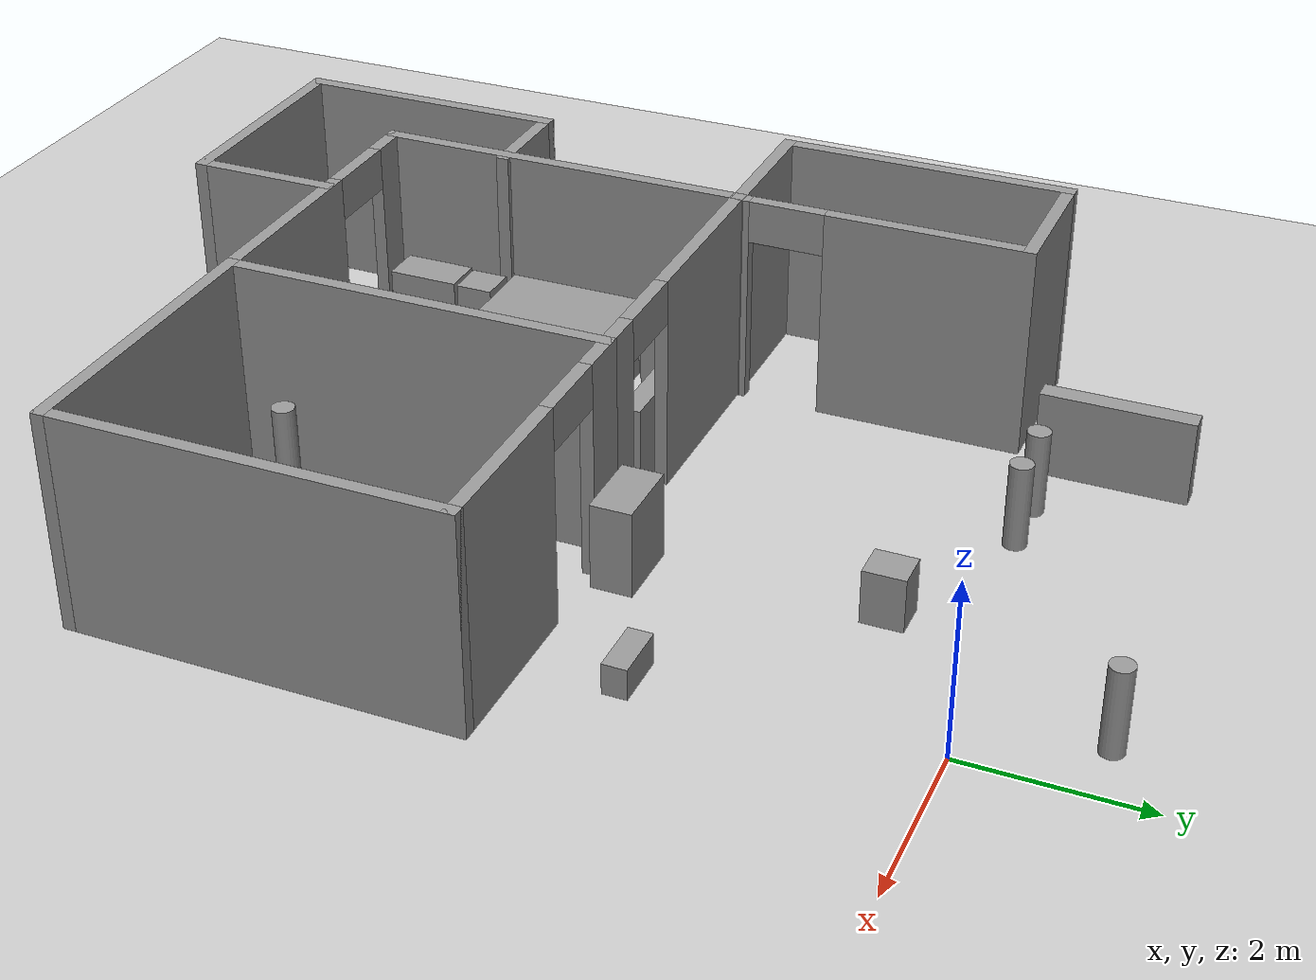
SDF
<sdf version="1.6">
 <world name="default">
  <model name="ground_plane">
   <static>1</static>
   <link name="link">
    <collision name="collision">
     <geometry><plane><normal>0 0 1</normal><size>100 100</size></plane></geometry>
     <surface><friction><ode><mu>100</mu><mu2>50</mu2></ode></friction></surface>
    </collision>
    <visual name="visual">
     <cast_shadows>0</cast_shadows>
     <geometry><plane><normal>0 0 1</normal><size>100 100</size></plane></geometry>
     <material>
      <script><uri>file://media/materials/scripts/gazebo.material</uri><name>Gazebo/Grey</name></script>
     </material>
    </visual>
   </link>
  </model>
  <model name="cma_varanda1">
   <pose>-6.32518 -2.59313 0 0 -0 0</pose>
   <link name="Wall_0">
    <pose>0.8 0 0 0 0 -1.5708</pose>
    <visual name="Wall_0_Visual_0">
     <pose>-0.5525 0 1.25 0 -0 0</pose>
     <geometry><box><size>2.395 0.15 2.5</size></box></geometry>
     <material>
      <script><uri>file://media/materials/scripts/gazebo.material</uri><name>Gazebo/Grey</name></script>
      <ambient>1 1 1 1</ambient>
     </material>
    </visual>
    <collision name="Wall_0_Collision_0">
     <geometry><box><size>2.395 0.15 2.5</size></box></geometry>
     <pose>-0.5525 0 1.25 0 -0 0</pose>
    </collision>
    <visual name="Wall_0_Visual_1">
     <pose>1.6375 0 1.25 0 -0 0</pose>
     <geometry><box><size>0.225 0.15 2.5</size></box></geometry>
     <material>
      <script><uri>file://media/materials/scripts/gazebo.material</uri><name>Gazebo/Grey</name></script>
      <ambient>1 1 1 1</ambient>
     </material>
    </visual>
    <collision name="Wall_0_Collision_1">
     <geometry><box><size>0.225 0.15 2.5</size></box></geometry>
     <pose>1.6375 0 1.25 0 -0 0</pose>
    </collision>
    <visual name="Wall_0_Visual_2">
     <pose>1.085 0 2.25 0 -0 0</pose>
     <geometry><box><size>0.88 0.15 0.5</size></box></geometry>
     <material>
      <script><uri>file://media/materials/scripts/gazebo.material</uri><name>Gazebo/Grey</name></script>
      <ambient>1 1 1 1</ambient>
     </material>
    </visual>
    <collision name="Wall_0_Collision_2">
     <geometry><box><size>0.88 0.15 0.5</size></box></geometry>
     <pose>1.085 0 2.25 0 -0 0</pose>
    </collision>
   </link>
   <link name="Wall_1">
    <collision name="Wall_1_Collision">
     <geometry><box><size>1.75 0.15 2.5</size></box></geometry>
     <pose>0 0 1.25 0 -0 0</pose>
    </collision>
    <visual name="Wall_1_Visual">
     <pose>0 0 1.25 0 -0 0</pose>
     <geometry><box><size>1.75 0.15 2.5</size></box></geometry>
     <material>
      <script><uri>file://media/materials/scripts/gazebo.material</uri><name>Gazebo/Grey</name></script>
      <ambient>1 1 1 1</ambient>
     </material>
    </visual>
    <pose>0 -1.675 0 0 -0 3.14159</pose>
   </link>
   <link name="Wall_2">
    <collision name="Wall_2_Collision">
     <geometry><box><size>3.5 0.15 2.5</size></box></geometry>
     <pose>0 0 1.25 0 -0 0</pose>
    </collision>
    <visual name="Wall_2_Visual">
     <pose>0 0 1.25 0 -0 0</pose>
     <geometry><box><size>3.5 0.15 2.5</size></box></geometry>
     <material>
      <script><uri>file://media/materials/scripts/gazebo.material</uri><name>Gazebo/Grey</name></script>
      <ambient>1 1 1 1</ambient>
     </material>
    </visual>
    <pose>-0.8 0 0 0 -0 1.5708</pose>
   </link>
   <link name="Wall_3">
    <collision name="Wall_3_Collision">
     <geometry><box><size>1.75 0.15 2.5</size></box></geometry>
     <pose>0 0 1.25 0 -0 0</pose>
    </collision>
    <visual name="Wall_3_Visual">
     <pose>0 0 1.25 0 -0 0</pose>
     <geometry><box><size>1.75 0.15 2.5</size></box></geometry>
     <material>
      <script><uri>file://media/materials/scripts/gazebo.material</uri><name>Gazebo/Grey</name></script>
      <ambient>1 1 1 1</ambient>
     </material>
    </visual>
    <pose>0 1.675 0 0 -0 0</pose>
   </link>
   <static>1</static>
  </model>
  <model name="cma_quartos">
   <pose>-2.58169 -7.26456 0 0 -0 0</pose>
   <link name="Wall_0">
    <collision name="Wall_0_Collision">
     <geometry><box><size>4.5 0.15 2.5</size></box></geometry>
     <pose>0 0 1.25 0 -0 0</pose>
    </collision>
    <visual name="Wall_0_Visual">
     <pose>0 0 1.25 0 -0 0</pose>
     <geometry><box><size>4.5 0.15 2.5</size></box></geometry>
     <material>
      <script><uri>file://media/materials/scripts/gazebo.material</uri><name>Gazebo/Grey</name></script>
      <ambient>1 1 1 1</ambient>
     </material>
    </visual>
    <pose>0.645 0.81 0 0 0 -1.5708</pose>
   </link>
   <link name="Wall_1">
    <pose>-1.155 -1.365 0 0 -0 3.14159</pose>
    <visual name="Wall_1_Visual_0">
     <pose>-0.7225 0 1.25 0 -0 0</pose>
     <geometry><box><size>2.305 0.15 2.5</size></box></geometry>
     <material>
      <script><uri>file://media/materials/scripts/gazebo.material</uri><name>Gazebo/Grey</name></script>
      <ambient>1 1 1 1</ambient>
     </material>
    </visual>
    <collision name="Wall_1_Collision_0">
     <geometry><box><size>2.305 0.15 2.5</size></box></geometry>
     <pose>-0.7225 0 1.25 0 -0 0</pose>
    </collision>
    <visual name="Wall_1_Visual_1">
     <pose>1.6025 0 1.25 0 -0 0</pose>
     <geometry><box><size>0.545 0.15 2.5</size></box></geometry>
     <material>
      <script><uri>file://media/materials/scripts/gazebo.material</uri><name>Gazebo/Grey</name></script>
      <ambient>1 1 1 1</ambient>
     </material>
    </visual>
    <collision name="Wall_1_Collision_1">
     <geometry><box><size>0.545 0.15 2.5</size></box></geometry>
     <pose>1.6025 0 1.25 0 -0 0</pose>
    </collision>
    <visual name="Wall_1_Visual_2">
     <pose>0.88 0 2.25 0 -0 0</pose>
     <geometry><box><size>0.9 0.15 0.5</size></box></geometry>
     <material>
      <script><uri>file://media/materials/scripts/gazebo.material</uri><name>Gazebo/Grey</name></script>
      <ambient>1 1 1 1</ambient>
     </material>
    </visual>
    <collision name="Wall_1_Collision_2">
     <geometry><box><size>0.9 0.15 0.5</size></box></geometry>
     <pose>0.88 0 2.25 0 -0 0</pose>
    </collision>
   </link>
   <link name="Wall_10">
    <collision name="Wall_10_Collision">
     <geometry><box><size>1.75 0.15 2.5</size></box></geometry>
     <pose>0 0 1.25 0 -0 0</pose>
    </collision>
    <visual name="Wall_10_Visual">
     <pose>0 0 1.25 0 -0 0</pose>
     <geometry><box><size>1.75 0.15 2.5</size></box></geometry>
     <material>
      <script><uri>file://media/materials/scripts/gazebo.material</uri><name>Gazebo/Grey</name></script>
      <ambient>1 1 1 1</ambient>
     </material>
    </visual>
    <pose>-1.395 -2.185 0 0 0 -1.5708</pose>
   </link>
   <link name="Wall_11">
    <collision name="Wall_11_Collision">
     <geometry><box><size>2.75 0.15 2.5</size></box></geometry>
     <pose>0 0 1.25 0 -0 0</pose>
    </collision>
    <visual name="Wall_11_Visual">
     <pose>0 0 1.25 0 -0 0</pose>
     <geometry><box><size>2.75 0.15 2.5</size></box></geometry>
     <material>
      <script><uri>file://media/materials/scripts/gazebo.material</uri><name>Gazebo/Grey</name></script>
      <ambient>1 1 1 1</ambient>
     </material>
    </visual>
    <pose>-2.695 -2.985 0 0 -0 3.14159</pose>
   </link>
   <link name="Wall_12">
    <collision name="Wall_12_Collision">
     <geometry><box><size>3.25 0.15 2.5</size></box></geometry>
     <pose>0 0 1.25 0 -0 0</pose>
    </collision>
    <visual name="Wall_12_Visual">
     <pose>0 0 1.25 0 -0 0</pose>
     <geometry><box><size>3.25 0.15 2.5</size></box></geometry>
     <material>
      <script><uri>file://media/materials/scripts/gazebo.material</uri><name>Gazebo/Grey</name></script>
      <ambient>1 1 1 1</ambient>
     </material>
    </visual>
    <pose>-3.995 -1.435 0 0 -0 1.5708</pose>
   </link>
   <link name="Wall_13">
    <collision name="Wall_13_Collision">
     <geometry><box><size>1.25 0.15 2.5</size></box></geometry>
     <pose>0 0 1.25 0 -0 0</pose>
    </collision>
    <visual name="Wall_13_Visual">
     <pose>0 0 1.25 0 -0 0</pose>
     <geometry><box><size>1.25 0.15 2.5</size></box></geometry>
     <material>
      <script><uri>file://media/materials/scripts/gazebo.material</uri><name>Gazebo/Grey</name></script>
      <ambient>1 1 1 1</ambient>
     </material>
    </visual>
    <pose>-3.445 0.115 0 0 -0 0</pose>
   </link>
   <link name="Wall_2">
    <collision name="Wall_2_Collision">
     <geometry><box><size>4.5 0.15 2.5</size></box></geometry>
     <pose>0 0 1.25 0 -0 0</pose>
    </collision>
    <visual name="Wall_2_Visual">
     <pose>0 0 1.25 0 -0 0</pose>
     <geometry><box><size>4.5 0.15 2.5</size></box></geometry>
     <material>
      <script><uri>file://media/materials/scripts/gazebo.material</uri><name>Gazebo/Grey</name></script>
      <ambient>1 1 1 1</ambient>
     </material>
    </visual>
    <pose>-2.955 0.81 0 0 -0 1.5708</pose>
   </link>
   <link name="Wall_3">
    <pose>-1.155 2.985 0 0 -0 0</pose>
    <visual name="Wall_3_Visual_0">
     <pose>-0.7325 0 1.25 0 -0 0</pose>
     <geometry><box><size>2.285 0.15 2.5</size></box></geometry>
     <material>
      <script><uri>file://media/materials/scripts/gazebo.material</uri><name>Gazebo/Grey</name></script>
      <ambient>1 1 1 1</ambient>
     </material>
    </visual>
    <collision name="Wall_3_Collision_0">
     <geometry><box><size>2.285 0.15 2.5</size></box></geometry>
     <pose>-0.7325 0 1.25 0 -0 0</pose>
    </collision>
    <visual name="Wall_3_Visual_1">
     <pose>1.5925 0 1.25 0 -0 0</pose>
     <geometry><box><size>0.565 0.15 2.5</size></box></geometry>
     <material>
      <script><uri>file://media/materials/scripts/gazebo.material</uri><name>Gazebo/Grey</name></script>
      <ambient>1 1 1 1</ambient>
     </material>
    </visual>
    <collision name="Wall_3_Collision_1">
     <geometry><box><size>0.565 0.15 2.5</size></box></geometry>
     <pose>1.5925 0 1.25 0 -0 0</pose>
    </collision>
    <visual name="Wall_3_Visual_2">
     <pose>0.86 0 2.25 0 -0 0</pose>
     <geometry><box><size>0.9 0.15 0.5</size></box></geometry>
     <material>
      <script><uri>file://media/materials/scripts/gazebo.material</uri><name>Gazebo/Grey</name></script>
      <ambient>1 1 1 1</ambient>
     </material>
    </visual>
    <collision name="Wall_3_Collision_2">
     <geometry><box><size>0.9 0.15 0.5</size></box></geometry>
     <pose>0.86 0 2.25 0 -0 0</pose>
    </collision>
   </link>
   <link name="Wall_6">
    <pose>2.32 2.985 0 0 -0 0</pose>
    <visual name="Wall_6_Visual_0">
     <pose>-1.4575 0 1.25 0 -0 0</pose>
     <geometry><box><size>0.585 0.15 2.5</size></box></geometry>
     <material>
      <script><uri>file://media/materials/scripts/gazebo.material</uri><name>Gazebo/Grey</name></script>
      <ambient>1 1 1 1</ambient>
     </material>
    </visual>
    <collision name="Wall_6_Collision_0">
     <geometry><box><size>0.585 0.15 2.5</size></box></geometry>
     <pose>-1.4575 0 1.25 0 -0 0</pose>
    </collision>
    <visual name="Wall_6_Visual_1">
     <pose>0.7425 0 1.25 0 -0 0</pose>
     <geometry><box><size>2.015 0.15 2.5</size></box></geometry>
     <material>
      <script><uri>file://media/materials/scripts/gazebo.material</uri><name>Gazebo/Grey</name></script>
      <ambient>1 1 1 1</ambient>
     </material>
    </visual>
    <collision name="Wall_6_Collision_1">
     <geometry><box><size>2.015 0.15 2.5</size></box></geometry>
     <pose>0.7425 0 1.25 0 -0 0</pose>
    </collision>
    <visual name="Wall_6_Visual_2">
     <pose>-0.715 0 2.25 0 -0 0</pose>
     <geometry><box><size>0.9 0.15 0.5</size></box></geometry>
     <material>
      <script><uri>file://media/materials/scripts/gazebo.material</uri><name>Gazebo/Grey</name></script>
      <ambient>1 1 1 1</ambient>
     </material>
    </visual>
    <collision name="Wall_6_Collision_2">
     <geometry><box><size>0.9 0.15 0.5</size></box></geometry>
     <pose>-0.715 0 2.25 0 -0 0</pose>
    </collision>
   </link>
   <link name="Wall_7">
    <collision name="Wall_7_Collision">
     <geometry><box><size>4.5 0.15 2.5</size></box></geometry>
     <pose>0 0 1.25 0 -0 0</pose>
    </collision>
    <visual name="Wall_7_Visual">
     <pose>0 0 1.25 0 -0 0</pose>
     <geometry><box><size>4.5 0.15 2.5</size></box></geometry>
     <material>
      <script><uri>file://media/materials/scripts/gazebo.material</uri><name>Gazebo/Grey</name></script>
      <ambient>1 1 1 1</ambient>
     </material>
    </visual>
    <pose>3.995 0.81 0 0 0 -1.5708</pose>
   </link>
   <link name="Wall_8">
    <collision name="Wall_8_Collision">
     <geometry><box><size>3.5 0.15 2.5</size></box></geometry>
     <pose>0 0 1.25 0 -0 0</pose>
    </collision>
    <visual name="Wall_8_Visual">
     <pose>0 0 1.25 0 -0 0</pose>
     <geometry><box><size>3.5 0.15 2.5</size></box></geometry>
     <material>
      <script><uri>file://media/materials/scripts/gazebo.material</uri><name>Gazebo/Grey</name></script>
      <ambient>1 1 1 1</ambient>
     </material>
    </visual>
    <pose>2.32 -1.365 0 0 -0 3.14159</pose>
   </link>
   <static>1</static>
  </model>
  <model name="cma_lixo_0">
   <link name="link_1">
    <pose>0.882962 1.81586 0.5 0 -0 0</pose>
    <inertial>
     <mass>0.0687644</mass>
     <inertia>
      <ixx>0.00602588</ixx>
      <ixy>0</ixy>
      <ixz>0</ixz>
      <iyy>0.00602588</iyy>
      <iyz>0</iyz>
      <izz>0.000591068</izz>
     </inertia>
    </inertial>
    <visual name="visual">
     <geometry><cylinder><radius>0.131112</radius><length>1</length></cylinder></geometry>
     <material>
      <lighting>1</lighting>
      <script><uri>file://media/materials/scripts/gazebo.material</uri><name>Gazebo/Grey</name></script>
      <ambient>0.3 0.3 0.3 1</ambient>
      <diffuse>0.7 0.7 0.7 1</diffuse>
      <specular>0.01 0.01 0.01 1</specular>
      <emissive>0 0 0 1</emissive>
     </material>
    </visual>
    <collision name="collision">
     <geometry><cylinder><radius>0.131112</radius><length>1</length></cylinder></geometry>
     <surface>
      <friction>
       <ode><mu>1</mu><mu2>1</mu2><fdir1>0 0 0</fdir1><slip1>0</slip1><slip2>0</slip2></ode>
       <torsional>
        <coefficient>1</coefficient>
        <patch_radius>0</patch_radius>
        <surface_radius>0</surface_radius>
        <use_patch_radius>1</use_patch_radius>
        <ode><slip>0</slip></ode>
       </torsional>
      </friction>
      <bounce><restitution_coefficient>0</restitution_coefficient><threshold>1e+06</threshold></bounce>
      <contact>
       <collide_without_contact>0</collide_without_contact>
       <collide_without_contact_bitmask>1</collide_without_contact_bitmask>
       <collide_bitmask>1</collide_bitmask>
       <ode>
        <soft_cfm>0</soft_cfm>
        <soft_erp>0.2</soft_erp>
        <kp>1e+13</kp>
        <kd>1</kd>
        <max_vel>0.01</max_vel>
        <min_depth>0</min_depth>
       </ode>
       <bullet>
        <split_impulse>1</split_impulse>
        <split_impulse_penetration_threshold>-0.01</split_impulse_penetration_threshold>
        <soft_cfm>0</soft_cfm>
        <soft_erp>0.2</soft_erp>
        <kp>1e+13</kp>
        <kd>1</kd>
       </bullet>
      </contact>
     </surface>
    </collision>
   </link>
   <static>0</static>
   <pose>-1.60935 -0.442731 -9e-06 0 0 -0.009777</pose>
  </model>
  <model name="cma_bau_s">
   <link name="link_1">
    <pose>0.109594 0.272293 0 0 -0 0</pose>
    <inertial>
     <mass>0.125479</mass>
     <inertia>
      <ixx>0.00641943</ixx>
      <ixy>0</ixy>
      <ixz>0</ixz>
      <iyy>0.0059754</iyy>
      <iyz>0</iyz>
      <izz>0.00422085</izz>
     </inertia>
    </inertial>
    <visual name="visual">
     <geometry><box><size>0.424964 0.472283 0.625118</size></box></geometry>
     <material>
      <lighting>1</lighting>
      <script><uri>file://media/materials/scripts/gazebo.material</uri><name>Gazebo/Grey</name></script>
      <ambient>0.3 0.3 0.3 1</ambient>
      <diffuse>0.7 0.7 0.7 1</diffuse>
      <specular>0.01 0.01 0.01 1</specular>
      <emissive>0 0 0 1</emissive>
     </material>
    </visual>
    <collision name="collision">
     <geometry><box><size>0.424964 0.472283 0.625118</size></box></geometry>
     <surface>
      <friction>
       <ode><mu>1</mu><mu2>1</mu2><fdir1>0 0 0</fdir1><slip1>0</slip1><slip2>0</slip2></ode>
       <torsional>
        <coefficient>1</coefficient>
        <patch_radius>0</patch_radius>
        <surface_radius>0</surface_radius>
        <use_patch_radius>1</use_patch_radius>
        <ode><slip>0</slip></ode>
       </torsional>
      </friction>
      <bounce><restitution_coefficient>0</restitution_coefficient><threshold>1e+06</threshold></bounce>
      <contact>
       <collide_without_contact>0</collide_without_contact>
       <collide_without_contact_bitmask>1</collide_without_contact_bitmask>
       <collide_bitmask>1</collide_bitmask>
       <ode>
        <soft_cfm>0</soft_cfm>
        <soft_erp>0.2</soft_erp>
        <kp>1e+13</kp>
        <kd>1</kd>
        <max_vel>0.01</max_vel>
        <min_depth>0</min_depth>
       </ode>
       <bullet>
        <split_impulse>1</split_impulse>
        <split_impulse_penetration_threshold>-0.01</split_impulse_penetration_threshold>
        <soft_cfm>0</soft_cfm>
        <soft_erp>0.2</soft_erp>
        <kp>1e+13</kp>
        <kd>1</kd>
       </bullet>
      </contact>
     </surface>
    </collision>
   </link>
   <static>0</static>
   <pose>-2.04285 -1.4857 0.312555 4e-06 -1.2e-05 0.000405</pose>
  </model>
  <model name="cma_armario_s">
   <link name="link_1">
    <pose>-2e-06 -3e-06 0 0 -0 0</pose>
    <inertial>
     <mass>0.390159</mass>
     <inertia>
      <ixx>0.039647</ixx>
      <ixy>0</ixy>
      <ixz>0</ixz>
      <iyy>0.0550708</iyy>
      <iyz>0</iyz>
      <izz>0.0296912</izz>
     </inertia>
    </inertial>
    <visual name="visual">
     <geometry><box><size>0.832942 0.468397 1</size></box></geometry>
     <material>
      <lighting>1</lighting>
      <script><uri>file://media/materials/scripts/gazebo.material</uri><name>Gazebo/Grey</name></script>
      <ambient>0.3 0.3 0.3 1</ambient>
      <diffuse>0.7 0.7 0.7 1</diffuse>
      <specular>0.01 0.01 0.01 1</specular>
      <emissive>0 0 0 1</emissive>
     </material>
    </visual>
    <collision name="collision">
     <geometry><box><size>0.832942 0.468397 1</size></box></geometry>
     <surface>
      <friction>
       <ode><mu>1</mu><mu2>1</mu2><fdir1>0 0 0</fdir1><slip1>0</slip1><slip2>0</slip2></ode>
       <torsional>
        <coefficient>1</coefficient>
        <patch_radius>0</patch_radius>
        <surface_radius>0</surface_radius>
        <use_patch_radius>1</use_patch_radius>
        <ode><slip>0</slip></ode>
       </torsional>
      </friction>
      <bounce><restitution_coefficient>0</restitution_coefficient><threshold>1e+06</threshold></bounce>
      <contact>
       <collide_without_contact>0</collide_without_contact>
       <collide_without_contact_bitmask>1</collide_without_contact_bitmask>
       <collide_bitmask>1</collide_bitmask>
       <ode>
        <soft_cfm>0</soft_cfm>
        <soft_erp>0.2</soft_erp>
        <kp>1e+13</kp>
        <kd>1</kd>
        <max_vel>0.01</max_vel>
        <min_depth>0</min_depth>
       </ode>
       <bullet>
        <split_impulse>1</split_impulse>
        <split_impulse_penetration_threshold>-0.01</split_impulse_penetration_threshold>
        <soft_cfm>0</soft_cfm>
        <soft_erp>0.2</soft_erp>
        <kp>1e+13</kp>
        <kd>1</kd>
       </bullet>
      </contact>
     </surface>
    </collision>
   </link>
   <static>0</static>
   <pose>-1.63839 -3.938 0.499996 1e-06 1e-05 0.001344</pose>
  </model>
  <model name="cma_cama_c">
   <link name="link_0">
    <pose>5e-06 -4e-06 0 0 -0 0</pose>
    <inertial>
     <mass>3.18358</mass>
     <inertia><ixx>0.934862</ixx><ixy>0</ixy><ixz>0</ixz><iyy>1.33069</iyy><iyz>0</iyz><izz>1.73496</izz></inertia>
    </inertial>
    <visual name="visual">
     <geometry><box><size>2.00394 1.58866 1</size></box></geometry>
     <material>
      <lighting>1</lighting>
      <script><uri>file://media/materials/scripts/gazebo.material</uri><name>Gazebo/Grey</name></script>
      <ambient>0.3 0.3 0.3 1</ambient>
      <diffuse>0.7 0.7 0.7 1</diffuse>
      <specular>0.01 0.01 0.01 1</specular>
      <emissive>0 0 0 1</emissive>
     </material>
    </visual>
    <collision name="collision">
     <geometry><box><size>2.00394 1.58866 1</size></box></geometry>
     <surface>
      <friction>
       <ode><mu>1</mu><mu2>1</mu2><fdir1>0 0 0</fdir1><slip1>0</slip1><slip2>0</slip2></ode>
       <torsional>
        <coefficient>1</coefficient>
        <patch_radius>0</patch_radius>
        <surface_radius>0</surface_radius>
        <use_patch_radius>1</use_patch_radius>
        <ode><slip>0</slip></ode>
       </torsional>
      </friction>
      <bounce><restitution_coefficient>0</restitution_coefficient><threshold>1e+06</threshold></bounce>
      <contact>
       <collide_without_contact>0</collide_without_contact>
       <collide_without_contact_bitmask>1</collide_without_contact_bitmask>
       <collide_bitmask>1</collide_bitmask>
       <ode>
        <soft_cfm>0</soft_cfm>
        <soft_erp>0.2</soft_erp>
        <kp>1e+13</kp>
        <kd>1</kd>
        <max_vel>0.01</max_vel>
        <min_depth>0</min_depth>
       </ode>
       <bullet>
        <split_impulse>1</split_impulse>
        <split_impulse_penetration_threshold>-0.01</split_impulse_penetration_threshold>
        <soft_cfm>0</soft_cfm>
        <soft_erp>0.2</soft_erp>
        <kp>1e+13</kp>
        <kd>1</kd>
       </bullet>
      </contact>
     </surface>
    </collision>
   </link>
   <static>0</static>
   <pose>-4.43933 -6.24816 0.5 0 -0 0</pose>
  </model>
  <model name="cma_armario_0">
   <link name="link_0">
    <pose>1.32157 0.885178 0.5 0 -0 0</pose>
    <inertial>
     <mass>0.402376</mass>
     <inertia>
      <ixx>0.0353686</ixx>
      <ixy>0</ixy>
      <ixz>0</ixz>
      <iyy>0.132616</iyy>
      <iyz>0</iyz>
      <izz>0.100922</izz>
     </inertia>
    </inertial>
    <visual name="visual">
     <geometry><box><size>1.71877 0.234069 1</size></box></geometry>
     <material>
      <lighting>1</lighting>
      <script><uri>file://media/materials/scripts/gazebo.material</uri><name>Gazebo/Grey</name></script>
      <ambient>0.3 0.3 0.3 1</ambient>
      <diffuse>0.7 0.7 0.7 1</diffuse>
      <specular>0.01 0.01 0.01 1</specular>
      <emissive>0 0 0 1</emissive>
     </material>
    </visual>
    <collision name="collision">
     <geometry><box><size>1.71877 0.234069 1</size></box></geometry>
     <surface>
      <friction>
       <ode><mu>1</mu><mu2>1</mu2><fdir1>0 0 0</fdir1><slip1>0</slip1><slip2>0</slip2></ode>
       <torsional>
        <coefficient>1</coefficient>
        <patch_radius>0</patch_radius>
        <surface_radius>0</surface_radius>
        <use_patch_radius>1</use_patch_radius>
        <ode><slip>0</slip></ode>
       </torsional>
      </friction>
      <bounce><restitution_coefficient>0</restitution_coefficient><threshold>1e+06</threshold></bounce>
      <contact>
       <collide_without_contact>0</collide_without_contact>
       <collide_without_contact_bitmask>1</collide_without_contact_bitmask>
       <collide_bitmask>1</collide_bitmask>
       <ode>
        <soft_cfm>0</soft_cfm>
        <soft_erp>0.2</soft_erp>
        <kp>1e+13</kp>
        <kd>1</kd>
        <max_vel>0.01</max_vel>
        <min_depth>0</min_depth>
       </ode>
       <bullet>
        <split_impulse>1</split_impulse>
        <split_impulse_penetration_threshold>-0.01</split_impulse_penetration_threshold>
        <soft_cfm>0</soft_cfm>
        <soft_erp>0.2</soft_erp>
        <kp>1e+13</kp>
        <kd>1</kd>
       </bullet>
      </contact>
     </surface>
    </collision>
   </link>
   <static>0</static>
   <pose>-5.27841 -5.41805 3e-06 -0 6e-06 -0.002385</pose>
  </model>
  <model name="cma_gaveteiro_pequeno_1">
   <link name="link_0">
    <pose>0.256174 1.25055 0.5 0 -0 0</pose>
    <inertial>
     <mass>0.187186</mass>
     <inertia>
      <ixx>0.01851</ixx>
      <ixy>0</ixy>
      <ixz>0</ixz>
      <iyy>0.0185276</iyy>
      <iyz>0</iyz>
      <izz>0.00583981</izz>
     </inertia>
    </inertial>
    <visual name="visual">
     <geometry><box><size>0.433317 0.432002 1</size></box></geometry>
     <material>
      <lighting>1</lighting>
      <script><uri>file://media/materials/scripts/gazebo.material</uri><name>Gazebo/Grey</name></script>
      <ambient>0.3 0.3 0.3 1</ambient>
      <diffuse>0.7 0.7 0.7 1</diffuse>
      <specular>0.01 0.01 0.01 1</specular>
      <emissive>0 0 0 1</emissive>
     </material>
    </visual>
    <collision name="collision">
     <geometry><box><size>0.433317 0.432002 1</size></box></geometry>
     <surface>
      <friction>
       <ode><mu>1</mu><mu2>1</mu2><fdir1>0 0 0</fdir1><slip1>0</slip1><slip2>0</slip2></ode>
       <torsional>
        <coefficient>1</coefficient>
        <patch_radius>0</patch_radius>
        <surface_radius>0</surface_radius>
        <use_patch_radius>1</use_patch_radius>
        <ode><slip>0</slip></ode>
       </torsional>
      </friction>
      <bounce><restitution_coefficient>0</restitution_coefficient><threshold>1e+06</threshold></bounce>
      <contact>
       <collide_without_contact>0</collide_without_contact>
       <collide_without_contact_bitmask>1</collide_without_contact_bitmask>
       <collide_bitmask>1</collide_bitmask>
       <ode>
        <soft_cfm>0</soft_cfm>
        <soft_erp>0.2</soft_erp>
        <kp>1e+13</kp>
        <kd>1</kd>
        <max_vel>0.01</max_vel>
        <min_depth>0</min_depth>
       </ode>
       <bullet>
        <split_impulse>1</split_impulse>
        <split_impulse_penetration_threshold>-0.01</split_impulse_penetration_threshold>
        <soft_cfm>0</soft_cfm>
        <soft_erp>0.2</soft_erp>
        <kp>1e+13</kp>
        <kd>1</kd>
       </bullet>
      </contact>
     </surface>
    </collision>
   </link>
   <static>0</static>
   <pose>-5.43096 -6.25508 -6e-06 4e-06 5e-06 -1.9e-05</pose>
  </model>
  <model name="cma_armario_s_0">
   <link name="link_1">
    <pose>-2e-06 -3e-06 0 0 -0 0</pose>
    <inertial>
     <mass>0.390159</mass>
     <inertia>
      <ixx>0.039647</ixx>
      <ixy>0</ixy>
      <ixz>0</ixz>
      <iyy>0.0550708</iyy>
      <iyz>0</iyz>
      <izz>0.0296912</izz>
     </inertia>
    </inertial>
    <visual name="visual">
     <geometry><box><size>0.832942 0.468397 1</size></box></geometry>
     <material>
      <lighting>1</lighting>
      <script><uri>file://media/materials/scripts/gazebo.material</uri><name>Gazebo/Grey</name></script>
      <ambient>0.3 0.3 0.3 1</ambient>
      <diffuse>0.7 0.7 0.7 1</diffuse>
      <specular>0.01 0.01 0.01 1</specular>
      <emissive>0 0 0 1</emissive>
     </material>
    </visual>
    <collision name="collision">
     <geometry><box><size>0.832942 0.468397 1</size></box></geometry>
     <surface>
      <friction>
       <ode><mu>1</mu><mu2>1</mu2><fdir1>0 0 0</fdir1><slip1>0</slip1><slip2>0</slip2></ode>
       <torsional>
        <coefficient>1</coefficient>
        <patch_radius>0</patch_radius>
        <surface_radius>0</surface_radius>
        <use_patch_radius>1</use_patch_radius>
        <ode><slip>0</slip></ode>
       </torsional>
      </friction>
      <bounce><restitution_coefficient>0</restitution_coefficient><threshold>1e+06</threshold></bounce>
      <contact>
       <collide_without_contact>0</collide_without_contact>
       <collide_without_contact_bitmask>1</collide_without_contact_bitmask>
       <collide_bitmask>1</collide_bitmask>
       <ode>
        <soft_cfm>0</soft_cfm>
        <soft_erp>0.2</soft_erp>
        <kp>1e+13</kp>
        <kd>1</kd>
        <max_vel>0.01</max_vel>
        <min_depth>0</min_depth>
       </ode>
       <bullet>
        <split_impulse>1</split_impulse>
        <split_impulse_penetration_threshold>-0.01</split_impulse_penetration_threshold>
        <soft_cfm>0</soft_cfm>
        <soft_erp>0.2</soft_erp>
        <kp>1e+13</kp>
        <kd>1</kd>
       </bullet>
      </contact>
     </surface>
    </collision>
   </link>
   <static>0</static>
   <pose>-5.1684 -8.01556 0.5 0 0 -1.5755</pose>
  </model>
  <model name="cma_gaveteiro_pequeno_2">
   <link name="link_0">
    <pose>0.256174 1.25055 0.5 0 -0 0</pose>
    <inertial>
     <mass>0.187186</mass>
     <inertia>
      <ixx>0.01851</ixx>
      <ixy>0</ixy>
      <ixz>0</ixz>
      <iyy>0.0185276</iyy>
      <iyz>0</iyz>
      <izz>0.00583981</izz>
     </inertia>
    </inertial>
    <visual name="visual">
     <geometry><box><size>0.433317 0.432002 1</size></box></geometry>
     <material>
      <lighting>1</lighting>
      <script><uri>file://media/materials/scripts/gazebo.material</uri><name>Gazebo/Grey</name></script>
      <ambient>0.3 0.3 0.3 1</ambient>
      <diffuse>0.7 0.7 0.7 1</diffuse>
      <specular>0.01 0.01 0.01 1</specular>
      <emissive>0 0 0 1</emissive>
     </material>
    </visual>
    <collision name="collision">
     <geometry><box><size>0.433317 0.432002 1</size></box></geometry>
     <surface>
      <friction>
       <ode><mu>1</mu><mu2>1</mu2><fdir1>0 0 0</fdir1><slip1>0</slip1><slip2>0</slip2></ode>
       <torsional>
        <coefficient>1</coefficient>
        <patch_radius>0</patch_radius>
        <surface_radius>0</surface_radius>
        <use_patch_radius>1</use_patch_radius>
        <ode><slip>0</slip></ode>
       </torsional>
      </friction>
      <bounce><restitution_coefficient>0</restitution_coefficient><threshold>1e+06</threshold></bounce>
      <contact>
       <collide_without_contact>0</collide_without_contact>
       <collide_without_contact_bitmask>1</collide_without_contact_bitmask>
       <collide_bitmask>1</collide_bitmask>
       <ode>
        <soft_cfm>0</soft_cfm>
        <soft_erp>0.2</soft_erp>
        <kp>1e+13</kp>
        <kd>1</kd>
        <max_vel>0.01</max_vel>
        <min_depth>0</min_depth>
       </ode>
       <bullet>
        <split_impulse>1</split_impulse>
        <split_impulse_penetration_threshold>-0.01</split_impulse_penetration_threshold>
        <soft_cfm>0</soft_cfm>
        <soft_erp>0.2</soft_erp>
        <kp>1e+13</kp>
        <kd>1</kd>
       </bullet>
      </contact>
     </surface>
    </collision>
   </link>
   <static>0</static>
   <pose>-5.3917 -8.58551 3e-06 -2e-06 -1e-06 -9.2e-05</pose>
  </model>
  <model name="cma_armario_s_1">
   <link name="link_1">
    <pose>-2e-06 -3e-06 0 0 -0 0</pose>
    <inertial>
     <mass>0.390159</mass>
     <inertia>
      <ixx>0.039647</ixx>
      <ixy>0</ixy>
      <ixz>0</ixz>
      <iyy>0.0550708</iyy>
      <iyz>0</iyz>
      <izz>0.0296912</izz>
     </inertia>
    </inertial>
    <visual name="visual">
     <geometry><box><size>0.832942 0.468397 1</size></box></geometry>
     <material>
      <lighting>1</lighting>
      <script><uri>file://media/materials/scripts/gazebo.material</uri><name>Gazebo/Grey</name></script>
      <ambient>0.3 0.3 0.3 1</ambient>
      <diffuse>0.7 0.7 0.7 1</diffuse>
      <specular>0.01 0.01 0.01 1</specular>
      <emissive>0 0 0 1</emissive>
     </material>
    </visual>
    <collision name="collision">
     <geometry><box><size>0.832942 0.468397 1</size></box></geometry>
     <surface>
      <friction>
       <ode><mu>1</mu><mu2>1</mu2><fdir1>0 0 0</fdir1><slip1>0</slip1><slip2>0</slip2></ode>
       <torsional>
        <coefficient>1</coefficient>
        <patch_radius>0</patch_radius>
        <surface_radius>0</surface_radius>
        <use_patch_radius>1</use_patch_radius>
        <ode><slip>0</slip></ode>
       </torsional>
      </friction>
      <bounce><restitution_coefficient>0</restitution_coefficient><threshold>1e+06</threshold></bounce>
      <contact>
       <collide_without_contact>0</collide_without_contact>
       <collide_without_contact_bitmask>1</collide_without_contact_bitmask>
       <collide_bitmask>1</collide_bitmask>
       <ode>
        <soft_cfm>0</soft_cfm>
        <soft_erp>0.2</soft_erp>
        <kp>1e+13</kp>
        <kd>1</kd>
        <max_vel>0.01</max_vel>
        <min_depth>0</min_depth>
       </ode>
       <bullet>
        <split_impulse>1</split_impulse>
        <split_impulse_penetration_threshold>-0.01</split_impulse_penetration_threshold>
        <soft_cfm>0</soft_cfm>
        <soft_erp>0.2</soft_erp>
        <kp>1e+13</kp>
        <kd>1</kd>
       </bullet>
      </contact>
     </surface>
    </collision>
   </link>
   <static>0</static>
   <pose>-3.5795 -7.82371 0.499999 -4e-06 -0 -0.000457</pose>
  </model>
  <model name="cma_armario_1">
   <link name="link_0">
    <pose>1.32157 0.885178 0.5 0 -0 0</pose>
    <inertial>
     <mass>0.402376</mass>
     <inertia>
      <ixx>0.0353686</ixx>
      <ixy>0</ixy>
      <ixz>0</ixz>
      <iyy>0.132616</iyy>
      <iyz>0</iyz>
      <izz>0.100922</izz>
     </inertia>
    </inertial>
    <visual name="visual">
     <geometry><box><size>1.71877 0.234069 1</size></box></geometry>
     <material>
      <lighting>1</lighting>
      <script><uri>file://media/materials/scripts/gazebo.material</uri><name>Gazebo/Grey</name></script>
      <ambient>0.3 0.3 0.3 1</ambient>
      <diffuse>0.7 0.7 0.7 1</diffuse>
      <specular>0.01 0.01 0.01 1</specular>
      <emissive>0 0 0 1</emissive>
     </material>
    </visual>
    <collision name="collision">
     <geometry><box><size>1.71877 0.234069 1</size></box></geometry>
     <surface>
      <friction>
       <ode><mu>1</mu><mu2>1</mu2><fdir1>0 0 0</fdir1><slip1>0</slip1><slip2>0</slip2></ode>
       <torsional>
        <coefficient>1</coefficient>
        <patch_radius>0</patch_radius>
        <surface_radius>0</surface_radius>
        <use_patch_radius>1</use_patch_radius>
        <ode><slip>0</slip></ode>
       </torsional>
      </friction>
      <bounce><restitution_coefficient>0</restitution_coefficient><threshold>1e+06</threshold></bounce>
      <contact>
       <collide_without_contact>0</collide_without_contact>
       <collide_without_contact_bitmask>1</collide_without_contact_bitmask>
       <collide_bitmask>1</collide_bitmask>
       <ode>
        <soft_cfm>0</soft_cfm>
        <soft_erp>0.2</soft_erp>
        <kp>1e+13</kp>
        <kd>1</kd>
        <max_vel>0.01</max_vel>
        <min_depth>0</min_depth>
       </ode>
       <bullet>
        <split_impulse>1</split_impulse>
        <split_impulse_penetration_threshold>-0.01</split_impulse_penetration_threshold>
        <soft_cfm>0</soft_cfm>
        <soft_erp>0.2</soft_erp>
        <kp>1e+13</kp>
        <kd>1</kd>
       </bullet>
      </contact>
     </surface>
    </collision>
   </link>
   <static>0</static>
   <pose>-4.70125 -9.22649 3e-06 -0 6e-06 -0.002385</pose>
  </model>
  <model name="cma_armario_2_clone">
   <link name="link_0">
    <pose>1.32157 0.885178 0.5 0 -0 0</pose>
    <inertial>
     <mass>0.402376</mass>
     <inertia>
      <ixx>0.0353686</ixx>
      <ixy>0</ixy>
      <ixz>0</ixz>
      <iyy>0.132616</iyy>
      <iyz>0</iyz>
      <izz>0.100922</izz>
     </inertia>
    </inertial>
    <visual name="visual">
     <geometry><box><size>1.71877 0.234069 1</size></box></geometry>
     <material>
      <lighting>1</lighting>
      <script><uri>file://media/materials/scripts/gazebo.material</uri><name>Gazebo/Grey</name></script>
      <ambient>0.3 0.3 0.3 1</ambient>
      <diffuse>0.7 0.7 0.7 1</diffuse>
      <specular>0.01 0.01 0.01 1</specular>
      <emissive>0 0 0 1</emissive>
     </material>
    </visual>
    <collision name="collision">
     <geometry><box><size>1.71877 0.234069 1</size></box></geometry>
     <surface>
      <friction>
       <ode><mu>1</mu><mu2>1</mu2><fdir1>0 0 0</fdir1><slip1>0</slip1><slip2>0</slip2></ode>
       <torsional>
        <coefficient>1</coefficient>
        <patch_radius>0</patch_radius>
        <surface_radius>0</surface_radius>
        <use_patch_radius>1</use_patch_radius>
        <ode><slip>0</slip></ode>
       </torsional>
      </friction>
      <bounce><restitution_coefficient>0</restitution_coefficient><threshold>1e+06</threshold></bounce>
      <contact>
       <collide_without_contact>0</collide_without_contact>
       <collide_without_contact_bitmask>1</collide_without_contact_bitmask>
       <collide_bitmask>1</collide_bitmask>
       <ode>
        <soft_cfm>0</soft_cfm>
        <soft_erp>0.2</soft_erp>
        <kp>1e+13</kp>
        <kd>1</kd>
        <max_vel>0.01</max_vel>
        <min_depth>0</min_depth>
       </ode>
       <bullet>
        <split_impulse>1</split_impulse>
        <split_impulse_penetration_threshold>-0.01</split_impulse_penetration_threshold>
        <soft_cfm>0</soft_cfm>
        <soft_erp>0.2</soft_erp>
        <kp>1e+13</kp>
        <kd>1</kd>
       </bullet>
      </contact>
     </surface>
    </collision>
   </link>
   <static>0</static>
   <pose>-1.44883 -8.44621 -1e-06 2e-06 -0 1.56274</pose>
  </model>
  <model name="cma_lixo_1">
   <link name="link_1">
    <pose>0.882962 1.81586 0.5 0 -0 0</pose>
    <inertial>
     <mass>0.0687644</mass>
     <inertia>
      <ixx>0.00602588</ixx>
      <ixy>0</ixy>
      <ixz>0</ixz>
      <iyy>0.00602588</iyy>
      <iyz>0</iyz>
      <izz>0.000591068</izz>
     </inertia>
    </inertial>
    <visual name="visual">
     <geometry><cylinder><radius>0.131112</radius><length>1</length></cylinder></geometry>
     <material>
      <lighting>1</lighting>
      <script><uri>file://media/materials/scripts/gazebo.material</uri><name>Gazebo/Grey</name></script>
      <ambient>0.3 0.3 0.3 1</ambient>
      <diffuse>0.7 0.7 0.7 1</diffuse>
      <specular>0.01 0.01 0.01 1</specular>
      <emissive>0 0 0 1</emissive>
     </material>
    </visual>
    <collision name="collision">
     <geometry><cylinder><radius>0.131112</radius><length>1</length></cylinder></geometry>
     <surface>
      <friction>
       <ode><mu>1</mu><mu2>1</mu2><fdir1>0 0 0</fdir1><slip1>0</slip1><slip2>0</slip2></ode>
       <torsional>
        <coefficient>1</coefficient>
        <patch_radius>0</patch_radius>
        <surface_radius>0</surface_radius>
        <use_patch_radius>1</use_patch_radius>
        <ode><slip>0</slip></ode>
       </torsional>
      </friction>
      <bounce><restitution_coefficient>0</restitution_coefficient><threshold>1e+06</threshold></bounce>
      <contact>
       <collide_without_contact>0</collide_without_contact>
       <collide_without_contact_bitmask>1</collide_without_contact_bitmask>
       <collide_bitmask>1</collide_bitmask>
       <ode>
        <soft_cfm>0</soft_cfm>
        <soft_erp>0.2</soft_erp>
        <kp>1e+13</kp>
        <kd>1</kd>
        <max_vel>0.01</max_vel>
        <min_depth>0</min_depth>
       </ode>
       <bullet>
        <split_impulse>1</split_impulse>
        <split_impulse_penetration_threshold>-0.01</split_impulse_penetration_threshold>
        <soft_cfm>0</soft_cfm>
        <soft_erp>0.2</soft_erp>
        <kp>1e+13</kp>
        <kd>1</kd>
       </bullet>
      </contact>
     </surface>
    </collision>
   </link>
   <static>0</static>
   <pose>-2.57103 -9.7975 -1e-06 0 -0 0</pose>
  </model>
  <model name="cma_armario_7">
   <link name="link_0">
    <pose>1.32157 0.885178 0.5 0 -0 0</pose>
    <inertial>
     <mass>0.402376</mass>
     <inertia>
      <ixx>0.0353686</ixx>
      <ixy>0</ixy>
      <ixz>0</ixz>
      <iyy>0.132616</iyy>
      <iyz>0</iyz>
      <izz>0.100922</izz>
     </inertia>
    </inertial>
    <visual name="visual">
     <geometry><box><size>1.71877 0.234069 1</size></box></geometry>
     <material>
      <lighting>1</lighting>
      <script><uri>file://media/materials/scripts/gazebo.material</uri><name>Gazebo/Grey</name></script>
      <ambient>0.3 0.3 0.3 1</ambient>
      <diffuse>0.7 0.7 0.7 1</diffuse>
      <specular>0.01 0.01 0.01 1</specular>
      <emissive>0 0 0 1</emissive>
     </material>
    </visual>
    <collision name="collision">
     <geometry><box><size>1.71877 0.234069 1</size></box></geometry>
     <surface>
      <friction>
       <ode><mu>1</mu><mu2>1</mu2><fdir1>0 0 0</fdir1><slip1>0</slip1><slip2>0</slip2></ode>
       <torsional>
        <coefficient>1</coefficient>
        <patch_radius>0</patch_radius>
        <surface_radius>0</surface_radius>
        <use_patch_radius>1</use_patch_radius>
        <ode><slip>0</slip></ode>
       </torsional>
      </friction>
      <bounce><restitution_coefficient>0</restitution_coefficient><threshold>1e+06</threshold></bounce>
      <contact>
       <collide_without_contact>0</collide_without_contact>
       <collide_without_contact_bitmask>1</collide_without_contact_bitmask>
       <collide_bitmask>1</collide_bitmask>
       <ode>
        <soft_cfm>0</soft_cfm>
        <soft_erp>0.2</soft_erp>
        <kp>1e+13</kp>
        <kd>1</kd>
        <max_vel>0.01</max_vel>
        <min_depth>0</min_depth>
       </ode>
       <bullet>
        <split_impulse>1</split_impulse>
        <split_impulse_penetration_threshold>-0.01</split_impulse_penetration_threshold>
        <soft_cfm>0</soft_cfm>
        <soft_erp>0.2</soft_erp>
        <kp>1e+13</kp>
        <kd>1</kd>
       </bullet>
      </contact>
     </surface>
    </collision>
   </link>
   <static>0</static>
   <pose>-4.38581 -1.06605 -2e-06 2e-06 -0 1.56801</pose>
  </model>
  <model name="cma_lixo_2">
   <link name="link_1">
    <pose>0.882962 1.81586 0.5 0 -0 0</pose>
    <inertial>
     <mass>0.0687644</mass>
     <inertia>
      <ixx>0.00602588</ixx>
      <ixy>0</ixy>
      <ixz>0</ixz>
      <iyy>0.00602588</iyy>
      <iyz>0</iyz>
      <izz>0.000591068</izz>
     </inertia>
    </inertial>
    <visual name="visual">
     <geometry><cylinder><radius>0.131112</radius><length>1</length></cylinder></geometry>
     <material>
      <lighting>1</lighting>
      <script><uri>file://media/materials/scripts/gazebo.material</uri><name>Gazebo/Grey</name></script>
      <ambient>0.3 0.3 0.3 1</ambient>
      <diffuse>0.7 0.7 0.7 1</diffuse>
      <specular>0.01 0.01 0.01 1</specular>
      <emissive>0 0 0 1</emissive>
     </material>
    </visual>
    <collision name="collision">
     <geometry><cylinder><radius>0.131112</radius><length>1</length></cylinder></geometry>
     <surface>
      <friction>
       <ode><mu>1</mu><mu2>1</mu2><fdir1>0 0 0</fdir1><slip1>0</slip1><slip2>0</slip2></ode>
       <torsional>
        <coefficient>1</coefficient>
        <patch_radius>0</patch_radius>
        <surface_radius>0</surface_radius>
        <use_patch_radius>1</use_patch_radius>
        <ode><slip>0</slip></ode>
       </torsional>
      </friction>
      <bounce><restitution_coefficient>0</restitution_coefficient><threshold>1e+06</threshold></bounce>
      <contact>
       <collide_without_contact>0</collide_without_contact>
       <collide_without_contact_bitmask>1</collide_without_contact_bitmask>
       <collide_bitmask>1</collide_bitmask>
       <ode>
        <soft_cfm>0</soft_cfm>
        <soft_erp>0.2</soft_erp>
        <kp>1e+13</kp>
        <kd>1</kd>
        <max_vel>0.01</max_vel>
        <min_depth>0</min_depth>
       </ode>
       <bullet>
        <split_impulse>1</split_impulse>
        <split_impulse_penetration_threshold>-0.01</split_impulse_penetration_threshold>
        <soft_cfm>0</soft_cfm>
        <soft_erp>0.2</soft_erp>
        <kp>1e+13</kp>
        <kd>1</kd>
       </bullet>
      </contact>
     </surface>
    </collision>
   </link>
   <static>0</static>
   <pose>-5.27342 -2.21345 -1e-06 0 -0 0</pose>
  </model>
  <model name="cma_lixo_3">
   <link name="link_1">
    <pose>0.882962 1.81586 0.5 0 -0 0</pose>
    <inertial>
     <mass>0.0687644</mass>
     <inertia>
      <ixx>0.00602588</ixx>
      <ixy>0</ixy>
      <ixz>0</ixz>
      <iyy>0.00602588</iyy>
      <iyz>0</iyz>
      <izz>0.000591068</izz>
     </inertia>
    </inertial>
    <visual name="visual">
     <geometry><cylinder><radius>0.131112</radius><length>1</length></cylinder></geometry>
     <material>
      <lighting>1</lighting>
      <script><uri>file://media/materials/scripts/gazebo.material</uri><name>Gazebo/Grey</name></script>
      <ambient>0.3 0.3 0.3 1</ambient>
      <diffuse>0.7 0.7 0.7 1</diffuse>
      <specular>0.01 0.01 0.01 1</specular>
      <emissive>0 0 0 1</emissive>
     </material>
    </visual>
    <collision name="collision">
     <geometry><cylinder><radius>0.131112</radius><length>1</length></cylinder></geometry>
     <surface>
      <friction>
       <ode><mu>1</mu><mu2>1</mu2><fdir1>0 0 0</fdir1><slip1>0</slip1><slip2>0</slip2></ode>
       <torsional>
        <coefficient>1</coefficient>
        <patch_radius>0</patch_radius>
        <surface_radius>0</surface_radius>
        <use_patch_radius>1</use_patch_radius>
        <ode><slip>0</slip></ode>
       </torsional>
      </friction>
      <bounce><restitution_coefficient>0</restitution_coefficient><threshold>1e+06</threshold></bounce>
      <contact>
       <collide_without_contact>0</collide_without_contact>
       <collide_without_contact_bitmask>1</collide_without_contact_bitmask>
       <collide_bitmask>1</collide_bitmask>
       <ode>
        <soft_cfm>0</soft_cfm>
        <soft_erp>0.2</soft_erp>
        <kp>1e+13</kp>
        <kd>1</kd>
        <max_vel>0.01</max_vel>
        <min_depth>0</min_depth>
       </ode>
       <bullet>
        <split_impulse>1</split_impulse>
        <split_impulse_penetration_threshold>-0.01</split_impulse_penetration_threshold>
        <soft_cfm>0</soft_cfm>
        <soft_erp>0.2</soft_erp>
        <kp>1e+13</kp>
        <kd>1</kd>
       </bullet>
      </contact>
     </surface>
    </collision>
   </link>
   <static>0</static>
   <pose>-4.57495 -2.209 -1e-06 0 -0 0</pose>
  </model>
  <model name="cma_barra_70cm">
   <link name="link_2">
    <pose>3.35384 1.20238 0.5 0 -0 0</pose>
    <inertial>
     <mass>0.0631368</mass>
     <inertia>
      <ixx>0.00106542</ixx>
      <ixy>0</ixy>
      <ixz>0</ixz>
      <iyy>0.00284727</iyy>
      <iyz>0</iyz>
      <izz>0.0025815</izz>
     </inertia>
    </inertial>
    <visual name="visual">
     <geometry><box><size>0.643938 0.275728 0.355737</size></box></geometry>
     <material>
      <lighting>1</lighting>
      <script><uri>file://media/materials/scripts/gazebo.material</uri><name>Gazebo/Grey</name></script>
      <ambient>0.3 0.3 0.3 1</ambient>
      <diffuse>0.7 0.7 0.7 1</diffuse>
      <specular>0.01 0.01 0.01 1</specular>
      <emissive>0 0 0 1</emissive>
     </material>
    </visual>
    <collision name="collision">
     <geometry><box><size>0.643938 0.275728 0.355737</size></box></geometry>
     <surface>
      <friction>
       <ode><mu>1</mu><mu2>1</mu2><fdir1>0 0 0</fdir1><slip1>0</slip1><slip2>0</slip2></ode>
       <torsional>
        <coefficient>1</coefficient>
        <patch_radius>0</patch_radius>
        <surface_radius>0</surface_radius>
        <use_patch_radius>1</use_patch_radius>
        <ode><slip>0</slip></ode>
       </torsional>
      </friction>
      <bounce><restitution_coefficient>0</restitution_coefficient><threshold>1e+06</threshold></bounce>
      <contact>
       <collide_without_contact>0</collide_without_contact>
       <collide_without_contact_bitmask>1</collide_without_contact_bitmask>
       <collide_bitmask>1</collide_bitmask>
       <ode>
        <soft_cfm>0</soft_cfm>
        <soft_erp>0.2</soft_erp>
        <kp>1e+13</kp>
        <kd>1</kd>
        <max_vel>0.01</max_vel>
        <min_depth>0</min_depth>
       </ode>
       <bullet>
        <split_impulse>1</split_impulse>
        <split_impulse_penetration_threshold>-0.01</split_impulse_penetration_threshold>
        <soft_cfm>0</soft_cfm>
        <soft_erp>0.2</soft_erp>
        <kp>1e+13</kp>
        <kd>1</kd>
       </bullet>
      </contact>
     </surface>
    </collision>
   </link>
   <static>0</static>
   <pose>-3.32443 -4.40543 -0.322168 2.7e-05 -0 -7e-06</pose>
  </model>
 </world>
</sdf>
